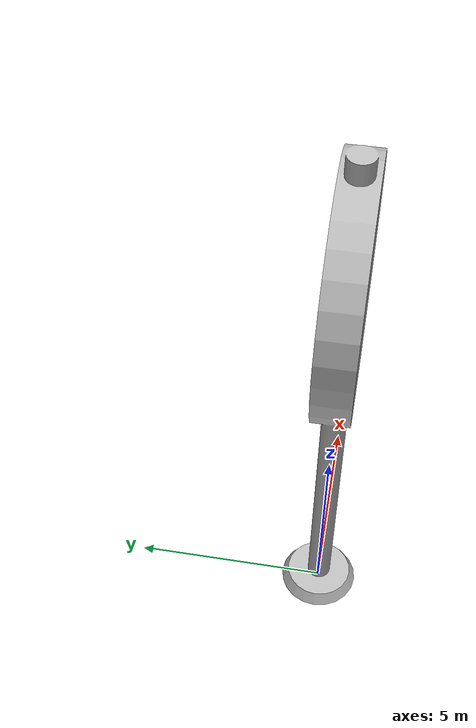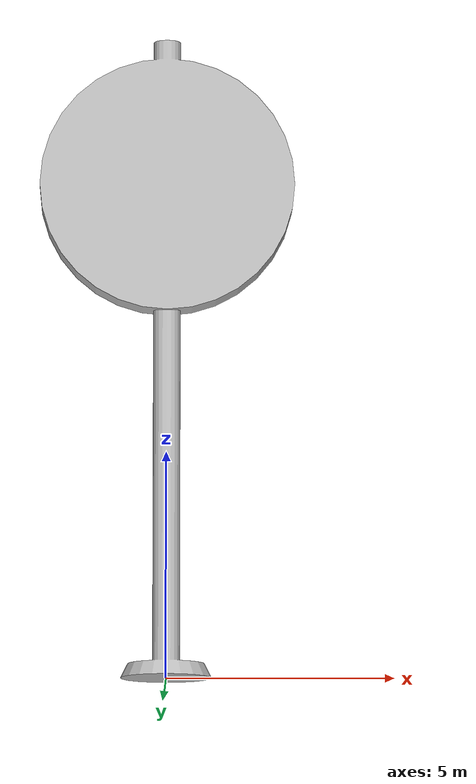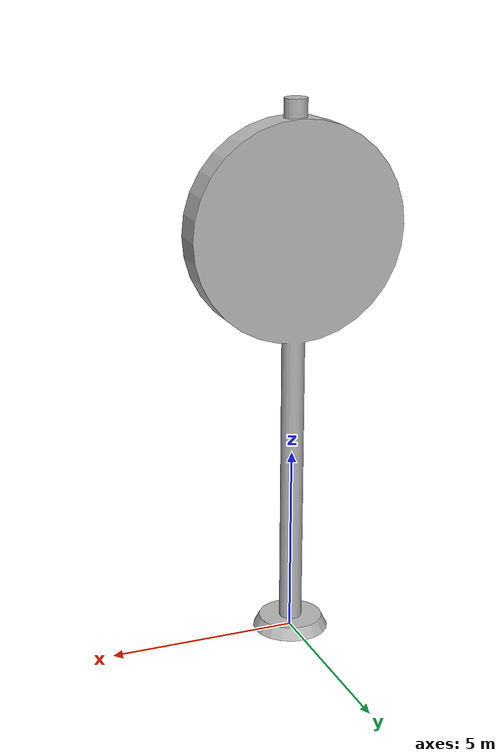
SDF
<?xml version="1.0" ?>
<sdf version="1.6">
  <model name="senalBUS">
    <static>true</static>
    <link name="link">
      <visual name="visual">
        <geometry>
          <mesh>
           <scale>1 1 1</scale>
            <uri>model://senalBus/meshes/senalBUS.dae</uri>
          </mesh>
        </geometry>
      </visual>
    </link>
  </model>
</sdf>
